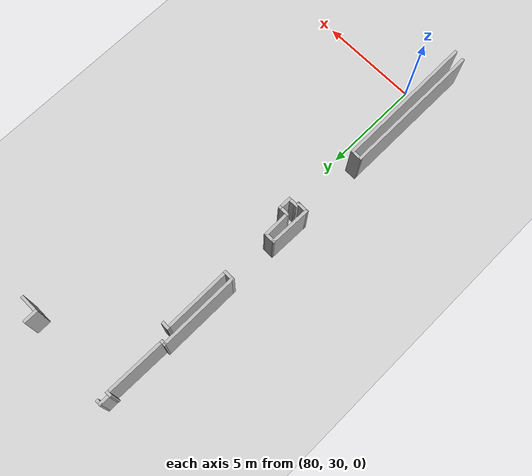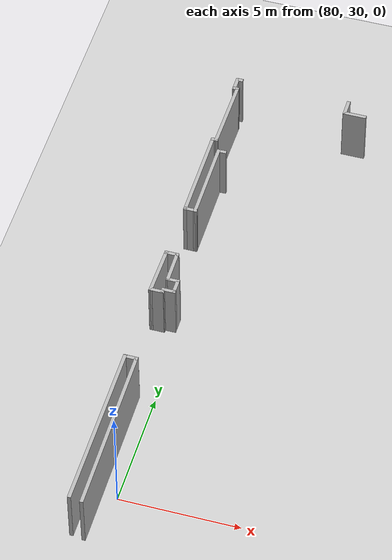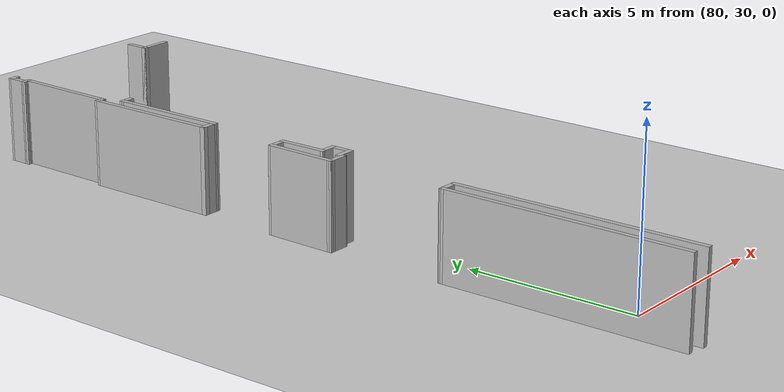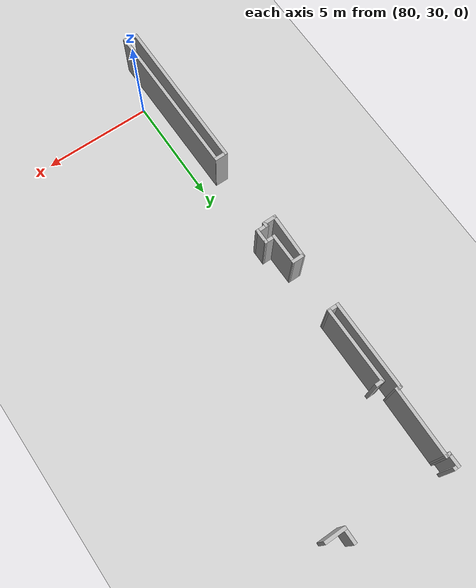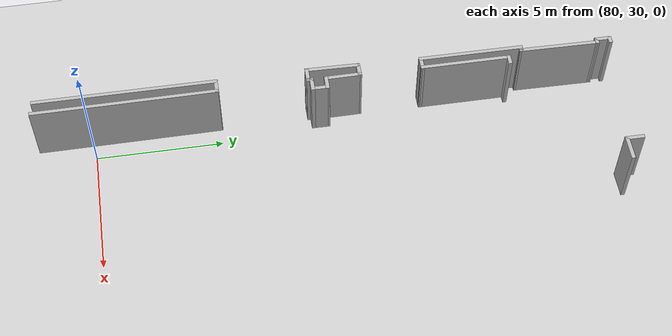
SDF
<sdf version="1.6">
 <world name="default">
  <model name="ground_plane">
   <static>1</static>
   <link name="link">
    <collision name="collision">
     <geometry><plane><normal>0 0 1</normal><size>200 100</size></plane></geometry>
     <surface><friction><ode><mu>100</mu><mu2>50</mu2></ode></friction></surface>
    </collision>
    <visual name="visual">
     <cast_shadows>0</cast_shadows>
     <geometry><plane><normal>0 0 1</normal><size>200 100</size></plane></geometry>
     <material>
      <script><uri>file://media/materials/scripts/gazebo.material</uri><name>Gazebo/Grey</name></script>
     </material>
    </visual>
   </link>
  </model>
  <model name="vgke_production">
   <link name="Wall_131">
    <pose>-19.7952 -15.9715 0 0 -0 1.57104</pose>
    <visual name="Wall_131_Visual">
     <pose>0 0 1.25 0 -0 0</pose>
     <geometry><box><size>7.18093 0.15 2.5</size></box></geometry>
    </visual>
    <collision name="Wall_131_Collision">
     <pose>0 0 1.25 0 -0 0</pose>
     <geometry><box><size>7.18093 0.15 2.5</size></box></geometry>
    </collision>
    <inertial>
     <inertia><ixx>1</ixx><ixy>0</ixy><ixz>0</ixz><iyy>1</iyy><iyz>0</iyz><izz>1</izz></inertia>
     <mass>1</mass>
    </inertial>
   </link>
   <link name="Wall_132">
    <pose>-19.5644 -12.4406 0 0 0 -0.001832</pose>
    <visual name="Wall_132_Visual">
     <pose>0 0 1.25 0 -0 0</pose>
     <geometry><box><size>0.613353 0.15 2.5</size></box></geometry>
    </visual>
    <collision name="Wall_132_Collision">
     <pose>0 0 1.25 0 -0 0</pose>
     <geometry><box><size>0.613353 0.15 2.5</size></box></geometry>
    </collision>
    <inertial>
     <inertia><ixx>1</ixx><ixy>0</ixy><ixz>0</ixz><iyy>1</iyy><iyz>0</iyz><izz>1</izz></inertia>
     <mass>1</mass>
    </inertial>
   </link>
   <link name="Wall_134">
    <pose>-19.3014 -16.018 0 0 0 -1.56394</pose>
    <visual name="Wall_134_Visual">
     <pose>0 0 1.25 0 -0 0</pose>
     <geometry><box><size>7.25475 0.15 2.5</size></box></geometry>
    </visual>
    <collision name="Wall_134_Collision">
     <pose>0 0 1.25 0 -0 0</pose>
     <geometry><box><size>7.25475 0.15 2.5</size></box></geometry>
    </collision>
    <inertial>
     <inertia><ixx>1</ixx><ixy>0</ixy><ixz>0</ixz><iyy>1</iyy><iyz>0</iyz><izz>1</izz></inertia>
     <mass>1</mass>
    </inertial>
   </link>
   <link name="Wall_162">
    <pose>-19.5889 -8.88211 0 0 -0 0</pose>
    <visual name="Wall_162_Visual">
     <pose>0 0 1.25 0 -0 0</pose>
     <geometry><box><size>0.612803 0.15 2.5</size></box></geometry>
    </visual>
    <collision name="Wall_162_Collision">
     <pose>0 0 1.25 0 -0 0</pose>
     <geometry><box><size>0.612803 0.15 2.5</size></box></geometry>
    </collision>
    <inertial>
     <inertia><ixx>1</ixx><ixy>0</ixy><ixz>0</ixz><iyy>1</iyy><iyz>0</iyz><izz>1</izz></inertia>
     <mass>1</mass>
    </inertial>
   </link>
   <link name="Wall_164">
    <pose>-19.7992 -7.87236 0 0 -0 1.54997</pose>
    <visual name="Wall_164_Visual">
     <pose>0 0 1.25 0 -0 0</pose>
     <geometry><box><size>2.17019 0.15 2.5</size></box></geometry>
    </visual>
    <collision name="Wall_164_Collision">
     <pose>0 0 1.25 0 -0 0</pose>
     <geometry><box><size>2.17019 0.15 2.5</size></box></geometry>
    </collision>
    <inertial>
     <inertia><ixx>1</ixx><ixy>0</ixy><ixz>0</ixz><iyy>1</iyy><iyz>0</iyz><izz>1</izz></inertia>
     <mass>1</mass>
    </inertial>
   </link>
   <link name="Wall_165">
    <pose>-19.552 -6.86261 0 0 -0 0</pose>
    <visual name="Wall_165_Visual">
     <pose>0 0 1.25 0 -0 0</pose>
     <geometry><box><size>0.602285 0.15 2.5</size></box></geometry>
    </visual>
    <collision name="Wall_165_Collision">
     <pose>0 0 1.25 0 -0 0</pose>
     <geometry><box><size>0.602285 0.15 2.5</size></box></geometry>
    </collision>
    <inertial>
     <inertia><ixx>1</ixx><ixy>0</ixy><ixz>0</ixz><iyy>1</iyy><iyz>0</iyz><izz>1</izz></inertia>
     <mass>1</mass>
    </inertial>
   </link>
   <link name="Wall_166">
    <pose>-19.3206 -7.52526 0 0 0 -1.56286</pose>
    <visual name="Wall_166_Visual">
     <pose>0 0 1.25 0 -0 0</pose>
     <geometry><box><size>1.47534 0.15 2.5</size></box></geometry>
    </visual>
    <collision name="Wall_166_Collision">
     <pose>0 0 1.25 0 -0 0</pose>
     <geometry><box><size>1.47534 0.15 2.5</size></box></geometry>
    </collision>
    <inertial>
     <inertia><ixx>1</ixx><ixy>0</ixy><ixz>0</ixz><iyy>1</iyy><iyz>0</iyz><izz>1</izz></inertia>
     <mass>1</mass>
    </inertial>
   </link>
   <link name="Wall_167">
    <pose>-19.1039 -8.18887 0 0 0 -0.00457</pose>
    <visual name="Wall_167_Visual">
     <pose>0 0 1.25 0 -0 0</pose>
     <geometry><box><size>0.572983 0.15 2.5</size></box></geometry>
    </visual>
    <collision name="Wall_167_Collision">
     <pose>0 0 1.25 0 -0 0</pose>
     <geometry><box><size>0.572983 0.15 2.5</size></box></geometry>
    </collision>
    <inertial>
     <inertia><ixx>1</ixx><ixy>0</ixy><ixz>0</ixz><iyy>1</iyy><iyz>0</iyz><izz>1</izz></inertia>
     <mass>1</mass>
    </inertial>
   </link>
   <link name="Wall_168">
    <pose>-18.8924 -8.47484 0 0 0 -1.5708</pose>
    <visual name="Wall_168_Visual">
     <pose>0 0 1.25 0 -0 0</pose>
     <geometry><box><size>0.720008 0.15 2.5</size></box></geometry>
    </visual>
    <collision name="Wall_168_Collision">
     <pose>0 0 1.25 0 -0 0</pose>
     <geometry><box><size>0.720008 0.15 2.5</size></box></geometry>
    </collision>
    <inertial>
     <inertia><ixx>1</ixx><ixy>0</ixy><ixz>0</ixz><iyy>1</iyy><iyz>0</iyz><izz>1</izz></inertia>
     <mass>1</mass>
    </inertial>
   </link>
   <link name="Wall_169">
    <pose>-19.1094 -8.75985 0 0 -0 3.14159</pose>
    <visual name="Wall_169_Visual">
     <pose>0 0 1.25 0 -0 0</pose>
     <geometry><box><size>0.584546 0.15 2.5</size></box></geometry>
    </visual>
    <collision name="Wall_169_Collision">
     <pose>0 0 1.25 0 -0 0</pose>
     <geometry><box><size>0.584546 0.15 2.5</size></box></geometry>
    </collision>
    <inertial>
     <inertia><ixx>1</ixx><ixy>0</ixy><ixz>0</ixz><iyy>1</iyy><iyz>0</iyz><izz>1</izz></inertia>
     <mass>1</mass>
    </inertial>
   </link>
   <link name="Wall_170">
    <pose>-19.3264 -8.81999 0 0 0 -1.5708</pose>
    <visual name="Wall_170_Visual">
     <pose>0 0 1.25 0 -0 0</pose>
     <geometry><box><size>0.270277 0.15 2.5</size></box></geometry>
    </visual>
    <collision name="Wall_170_Collision">
     <pose>0 0 1.25 0 -0 0</pose>
     <geometry><box><size>0.270277 0.15 2.5</size></box></geometry>
    </collision>
    <inertial>
     <inertia><ixx>1</ixx><ixy>0</ixy><ixz>0</ixz><iyy>1</iyy><iyz>0</iyz><izz>1</izz></inertia>
     <mass>1</mass>
    </inertial>
   </link>
   <link name="Wall_172">
    <pose>-19.7146 -2.37711 0 0 0 -1.57088</pose>
    <visual name="Wall_172_Visual">
     <pose>0 0 1.25 0 -0 0</pose>
     <geometry><box><size>4.15152 0.15 2.5</size></box></geometry>
    </visual>
    <collision name="Wall_172_Collision">
     <pose>0 0 1.25 0 -0 0</pose>
     <geometry><box><size>4.15152 0.15 2.5</size></box></geometry>
    </collision>
    <inertial>
     <inertia><ixx>1</ixx><ixy>0</ixy><ixz>0</ixz><iyy>1</iyy><iyz>0</iyz><izz>1</izz></inertia>
     <mass>1</mass>
    </inertial>
   </link>
   <link name="Wall_174">
    <pose>-19.504 -4.37786 0 0 -0 0</pose>
    <visual name="Wall_174_Visual">
     <pose>0 0 1.25 0 -0 0</pose>
     <geometry><box><size>0.571593 0.15 2.5</size></box></geometry>
    </visual>
    <collision name="Wall_174_Collision">
     <pose>0 0 1.25 0 -0 0</pose>
     <geometry><box><size>0.571593 0.15 2.5</size></box></geometry>
    </collision>
    <inertial>
     <inertia><ixx>1</ixx><ixy>0</ixy><ixz>0</ixz><iyy>1</iyy><iyz>0</iyz><izz>1</izz></inertia>
     <mass>1</mass>
    </inertial>
   </link>
   <link name="Wall_176">
    <pose>-19.2966 -2.65977 0 0 -0 1.57275</pose>
    <visual name="Wall_176_Visual">
     <pose>0 0 1.25 0 -0 0</pose>
     <geometry><box><size>3.58619 0.15 2.5</size></box></geometry>
    </visual>
    <collision name="Wall_176_Collision">
     <pose>0 0 1.25 0 -0 0</pose>
     <geometry><box><size>3.58619 0.15 2.5</size></box></geometry>
    </collision>
    <inertial>
     <inertia><ixx>1</ixx><ixy>0</ixy><ixz>0</ixz><iyy>1</iyy><iyz>0</iyz><izz>1</izz></inertia>
     <mass>1</mass>
    </inertial>
   </link>
   <link name="Wall_177">
    <pose>-19.1678 -0.941685 0 0 -0 0</pose>
    <visual name="Wall_177_Visual">
     <pose>0 0 1.25 0 -0 0</pose>
     <geometry><box><size>0.414297 0.15 2.5</size></box></geometry>
    </visual>
    <collision name="Wall_177_Collision">
     <pose>0 0 1.25 0 -0 0</pose>
     <geometry><box><size>0.414297 0.15 2.5</size></box></geometry>
    </collision>
    <inertial>
     <inertia><ixx>1</ixx><ixy>0</ixy><ixz>0</ixz><iyy>1</iyy><iyz>0</iyz><izz>1</izz></inertia>
     <mass>1</mass>
    </inertial>
   </link>
   <link name="Wall_179">
    <pose>-19.6393 -0.373856 0 0 -0 0.03319</pose>
    <visual name="Wall_179_Visual">
     <pose>0 0 1.25 0 -0 0</pose>
     <geometry><box><size>0.300325 0.15 2.5</size></box></geometry>
    </visual>
    <collision name="Wall_179_Collision">
     <pose>0 0 1.25 0 -0 0</pose>
     <geometry><box><size>0.300325 0.15 2.5</size></box></geometry>
    </collision>
    <inertial>
     <inertia><ixx>1</ixx><ixy>0</ixy><ixz>0</ixz><iyy>1</iyy><iyz>0</iyz><izz>1</izz></inertia>
     <mass>1</mass>
    </inertial>
   </link>
   <link name="Wall_180">
    <pose>-19.5434 1.15878 0 0 -0 1.55716</pose>
    <visual name="Wall_180_Visual">
     <pose>0 0 1.25 0 -0 0</pose>
     <geometry><box><size>3.21057 0.15 2.5</size></box></geometry>
    </visual>
    <collision name="Wall_180_Collision">
     <pose>0 0 1.25 0 -0 0</pose>
     <geometry><box><size>3.21057 0.15 2.5</size></box></geometry>
    </collision>
    <inertial>
     <inertia><ixx>1</ixx><ixy>0</ixy><ixz>0</ixz><iyy>1</iyy><iyz>0</iyz><izz>1</izz></inertia>
     <mass>1</mass>
    </inertial>
   </link>
   <link name="Wall_187">
    <pose>-19.5901 2.68856 0 0 0 -3.13624</pose>
    <visual name="Wall_187_Visual">
     <pose>0 0 1.25 0 -0 0</pose>
     <geometry><box><size>0.285269 0.15 2.5</size></box></geometry>
    </visual>
    <collision name="Wall_187_Collision">
     <pose>0 0 1.25 0 -0 0</pose>
     <geometry><box><size>0.285269 0.15 2.5</size></box></geometry>
    </collision>
    <inertial>
     <inertia><ixx>1</ixx><ixy>0</ixy><ixz>0</ixz><iyy>1</iyy><iyz>0</iyz><izz>1</izz></inertia>
     <mass>1</mass>
    </inertial>
   </link>
   <link name="Wall_198">
    <pose>-19.6578 2.95097 0 0 -0 1.57079</pose>
    <visual name="Wall_198_Visual">
     <pose>0 0 1.25 0 -0 0</pose>
     <geometry><box><size>0.675533 0.15 2.5</size></box></geometry>
    </visual>
    <collision name="Wall_198_Collision">
     <pose>0 0 1.25 0 -0 0</pose>
     <geometry><box><size>0.675533 0.15 2.5</size></box></geometry>
    </collision>
    <inertial>
     <inertia><ixx>1</ixx><ixy>0</ixy><ixz>0</ixz><iyy>1</iyy><iyz>0</iyz><izz>1</izz></inertia>
     <mass>1</mass>
    </inertial>
   </link>
   <link name="Wall_202">
    <pose>-19.5794 3.214 0 0 -0 0.003356</pose>
    <visual name="Wall_202_Visual">
     <pose>0 0 1.25 0 -0 0</pose>
     <geometry><box><size>0.306787 0.15 2.5</size></box></geometry>
    </visual>
    <collision name="Wall_202_Collision">
     <pose>0 0 1.25 0 -0 0</pose>
     <geometry><box><size>0.306787 0.15 2.5</size></box></geometry>
    </collision>
    <inertial>
     <inertia><ixx>1</ixx><ixy>0</ixy><ixz>0</ixz><iyy>1</iyy><iyz>0</iyz><izz>1</izz></inertia>
     <mass>1</mass>
    </inertial>
   </link>
   <link name="Wall_496">
    <pose>-14.7992 2.89941 0 0 0 -1.5708</pose>
    <visual name="Wall_496_Visual">
     <pose>0 0 1.25 0 -0 0</pose>
     <geometry><box><size>0.75 0.15 2.5</size></box></geometry>
    </visual>
    <collision name="Wall_496_Collision">
     <pose>0 0 1.25 0 -0 0</pose>
     <geometry><box><size>0.75 0.15 2.5</size></box></geometry>
    </collision>
    <inertial>
     <inertia><ixx>1</ixx><ixy>0</ixy><ixz>0</ixz><iyy>1</iyy><iyz>0</iyz><izz>1</izz></inertia>
     <mass>1</mass>
    </inertial>
   </link>
   <link name="Wall_497">
    <pose>-14.3742 2.59941 0 0 -0 0</pose>
    <visual name="Wall_497_Visual">
     <pose>0 0 1.25 0 -0 0</pose>
     <geometry><box><size>1 0.15 2.5</size></box></geometry>
    </visual>
    <collision name="Wall_497_Collision">
     <pose>0 0 1.25 0 -0 0</pose>
     <geometry><box><size>1 0.15 2.5</size></box></geometry>
    </collision>
    <inertial>
     <inertia><ixx>1</ixx><ixy>0</ixy><ixz>0</ixz><iyy>1</iyy><iyz>0</iyz><izz>1</izz></inertia>
     <mass>1</mass>
    </inertial>
   </link>
   <pose>98.6 47.426 0.01 0 0 0</pose>
  </model>
 </world>
</sdf>
